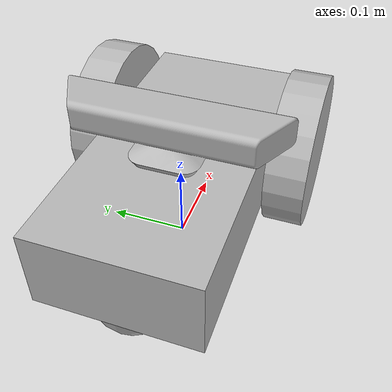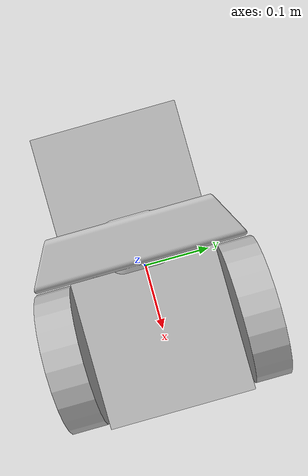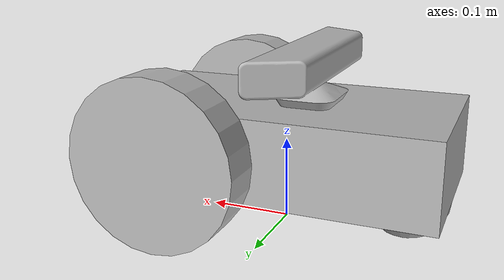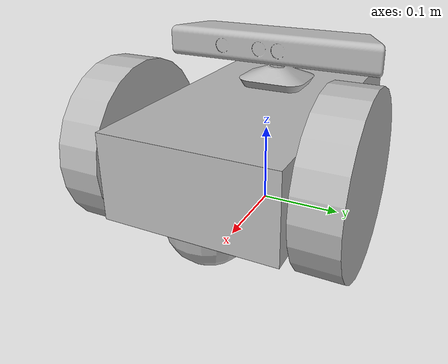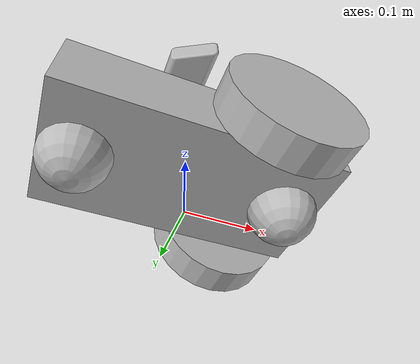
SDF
<?xml version='1.0'?>
<sdf version='1.4'>
  <model name="my_bot">
  <static>false</static>

<link name='chassis'>
          <pose>0 0 .1 0 0 0</pose>
          <collision name='collision'>
            <geometry>
              <box>
                <size>.4 .2 .1</size>
              </box>
            </geometry>
          </collision>

          <visual name='visual'>
            <geometry>
              <box>
                <size>.4 .2 .1</size>
              </box>
            </geometry>
          </visual>
 <collision name='caster_collision'>
            <pose>-0.15 0 -0.05 0 0 0</pose>
            <geometry>
                <sphere>
                <radius>.05</radius>
              </sphere>
            </geometry>

            <surface>
              <friction>
                <ode>
                  <mu>0</mu>
                  <mu2>0</mu2>
                  <slip1>1.0</slip1>
                  <slip2>1.0</slip2>
                </ode>
              </friction>
            </surface>
          </collision>

          <visual name='caster_visual'>
            <pose>-0.15 0 -0.05 0 0 0</pose>
            <geometry>
              <sphere>
                <radius>.05</radius>
              </sphere>
            </geometry>
          </visual>

<collision name='front_caster_collision'>
      <pose>0.15 0 -0.05 0 0 0</pose>
      <geometry>
       <sphere>
	<radius>0.05</radius>
	</sphere>
      </geometry>
      <surface>
        <friction>
          <ode>
            <mu>0</mu>
            <mu2>0</mu2>
            <slip1>1.0</slip1>
            <slip2>1.0</slip2>
          </ode>
        </friction>
      </surface>
    </collision>

    <visual name='front_caster_visual'>
      <pose>0.15 0 -0.05 0 0 0</pose>
      <geometry>
        <sphere>
	<radius>0.05</radius>
	</sphere>
      </geometry>
    </visual>
</link>
<link name="left_wheel">
        <pose>0.1 0.13 0.1 0 1.5707 1.5707</pose>
        <collision name="collision">
          <geometry>
            <cylinder>
              <radius>.1</radius>
              <length>.05</length>
            </cylinder>
          </geometry>
        </collision>
        <visual name="visual">
          <geometry>
            <cylinder>
              <radius>.1</radius>
              <length>.05</length>
            </cylinder>
          </geometry>
        </visual>
      </link>
<link name="right_wheel">
        <pose>0.1 -0.13 0.1 0 1.5707 1.5707</pose>
        <collision name="collision">
          <geometry>
            <cylinder>
              <radius>.1</radius>
              <length>.05</length>
            </cylinder>
          </geometry>
        </collision>
        <visual name="visual">
          <geometry>
            <cylinder>
              <radius>.1</radius>
              <length>.05</length>
            </cylinder>
          </geometry>
        </visual>
      </link>
<joint type="continous" name="left_wheel_hinge">
        <pose>0 0.15 0 0 0 0</pose>
        <child>left_wheel</child>
        <parent>chassis</parent>
        <axis>
          <xyz>0 1 0</xyz>
        </axis>
      </joint>

      <joint type="continous" name="right_wheel_hinge">
        <pose>0 -0.15 0 0 0 0</pose>
        <child>right_wheel</child>
        <parent>chassis</parent>
        <axis>
          <xyz>0 1 0</xyz>
        </axis>
      </joint>

<link name ="camera">
  <pose>0 0 0.2 0 0 0</pose>
<visual name="visual">
        <geometry>
          <mesh>
            <uri>model://kinect/meshes/kinect.dae</uri>
          </mesh>
        </geometry>
      </visual>
 <sensor name="camera" type="depth">

        <update_rate>20</update_rate>
        <camera>
          <horizontal_fov>1.047198</horizontal_fov>
          <image>
            <width>640</width>
            <height>480</height>
            <format>R8G8B8</format>
          </image>
          <clip>
            <near>0.05</near>
            <far>3</far>
          </clip>
        </camera>
        <plugin name="camera_plugin" filename="libgazebo_ros_openni_kinect.so">
          <baseline>0.2</baseline>
          <alwaysOn>true</alwaysOn>
          <updateRate>0.0</updateRate>
          <cameraName>camera_ir</cameraName>
          <imageTopicName>/camera/depth/image_raw</imageTopicName>
          <cameraInfoTopicName>/camera/depth/camera_info</cameraInfoTopicName>
          <depthImageTopicName>/camera/depth/image_raw</depthImageTopicName>
          <depthImageInfoTopicName>/camera/depth/camera_info</depthImageInfoTopicName>
          <pointCloudTopicName>/camera/depth/points</pointCloudTopicName>
          <frameName>my_camera_link</frameName>
          <pointCloudCutoff>0.05</pointCloudCutoff>
          <distortionK1>0</distortionK1>
          <distortionK2>0</distortionK2>
          <distortionK3>0</distortionK3>
          <distortionT1>0</distortionT1>
          <distortionT2>0</distortionT2>
          <CxPrime>0</CxPrime>
          <Cx>0</Cx>
          <Cy>0</Cy>
          <focalLength>0</focalLength>
          <hackBaseline>0</hackBaseline>
        </plugin>
      </sensor>
 </link>
 <joint type="fixed" name="camera_joint">
<pose>0 0 0 0 0 0</pose>
 <child>camera</child>
 <parent>chassis</parent>
 </joint>

</model>
</sdf>
